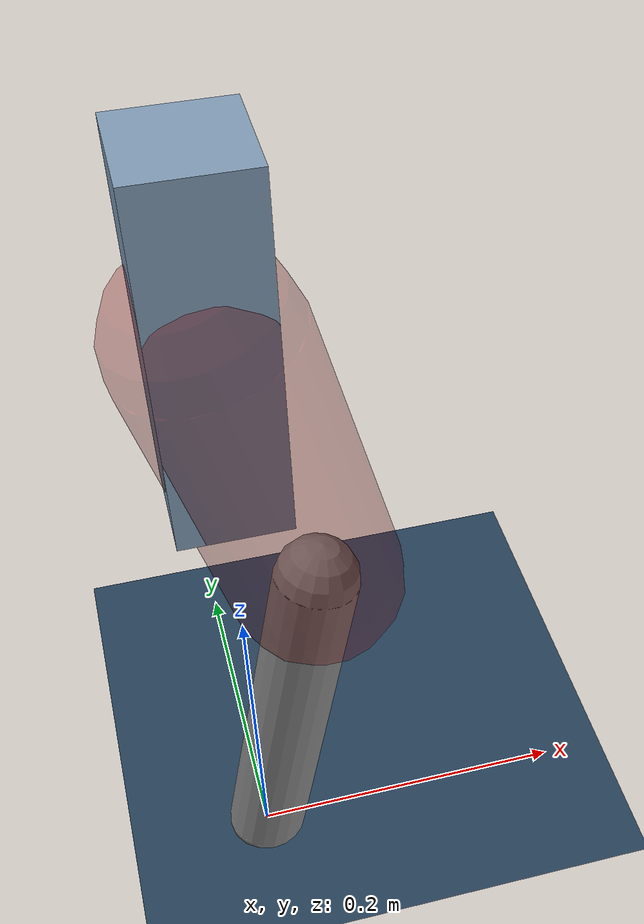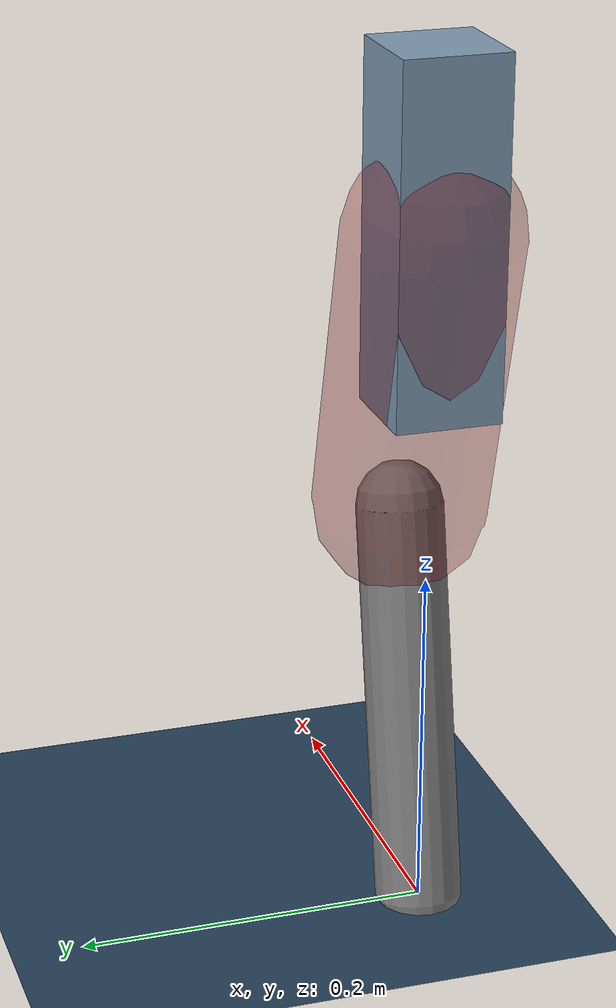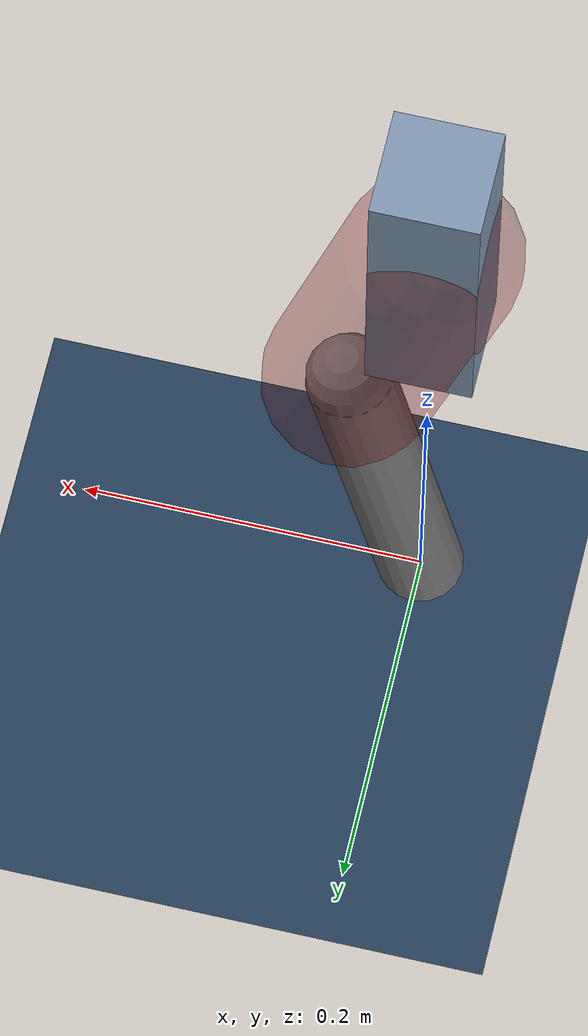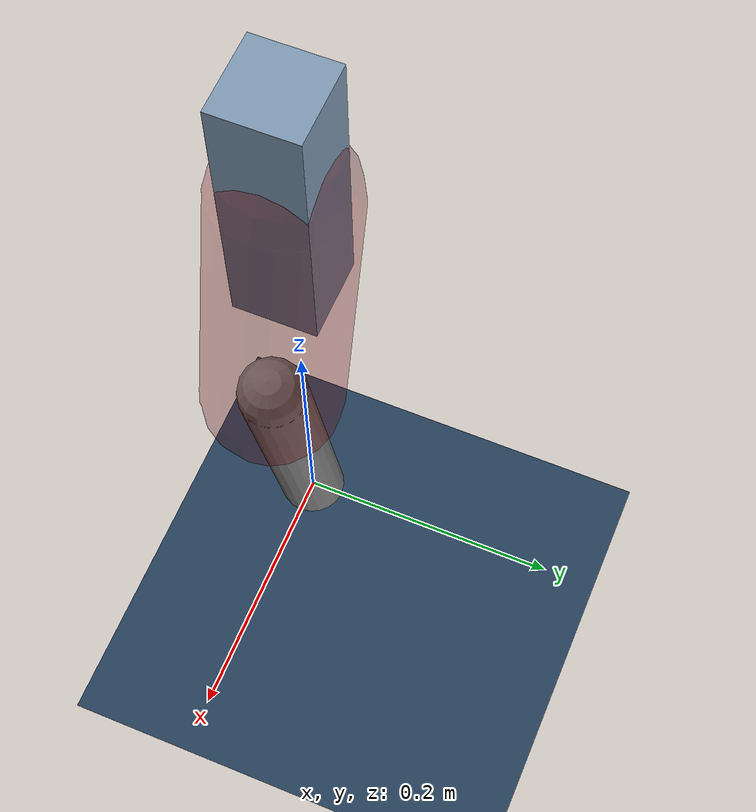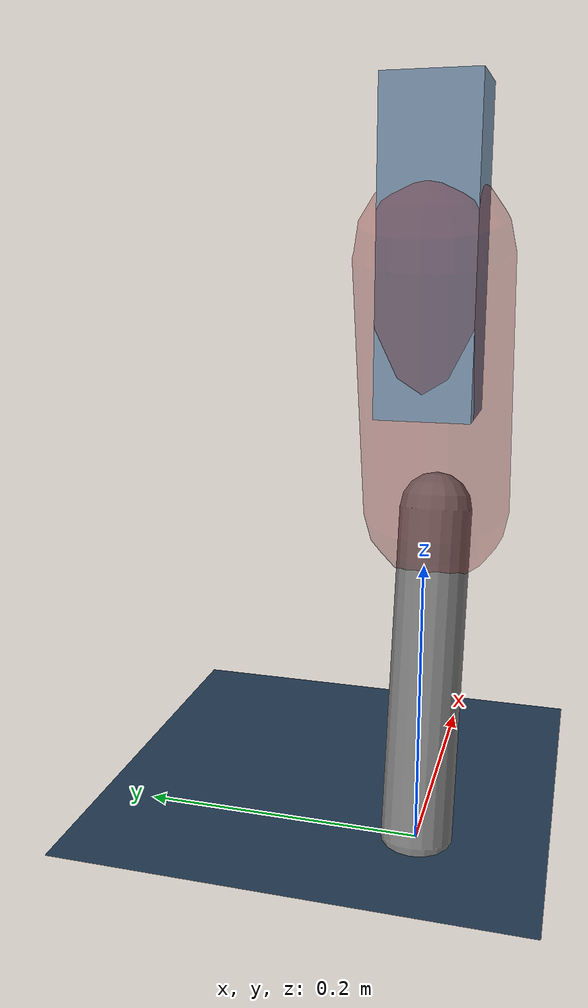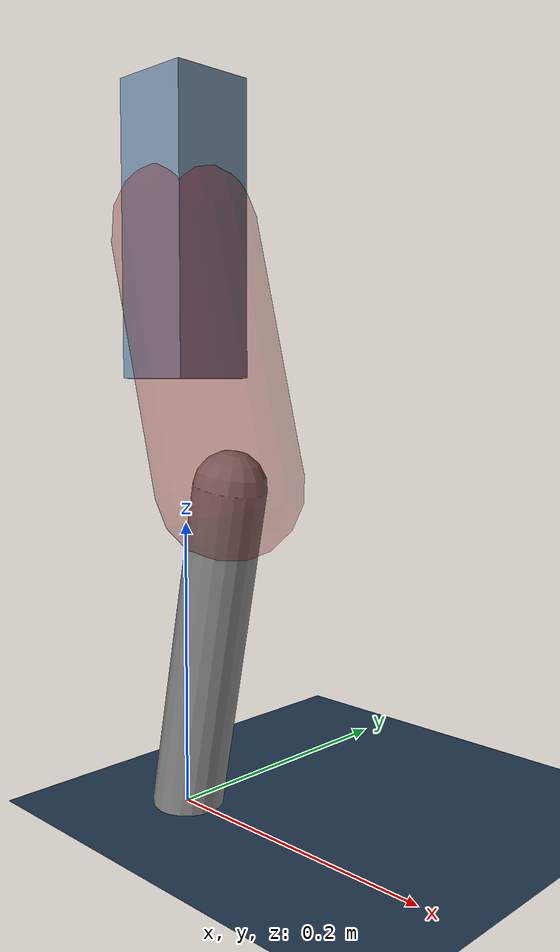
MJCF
<mujoco model="Hopper2D">
	<compiler inertiafromgeom="true" angle="radian" />
	<option timestep="0.001" integrator="implicit" cone="elliptic" solver="Newton" tolerance="1e-10" />

	<default>
		<geom contype="1" conaffinity="1" condim="3" friction="2 0.005 0.0001" solref="0.005 1" />
		<joint limited="true" damping="0.1" />
	</default>

	<asset>
		<texture name="skybox" type="skybox" builtin="gradient" rgb1=".4 .6 .8" rgb2="0 0 0" width="800" height="800" />
		<texture name="grid" type="2d" builtin="checker" rgb1=".1 .2 .3" rgb2=".2 .3 .4" width="300" height="300" mark="edge" markrgb=".2 .3 .4" />
		<material name="ground" texture="grid" texrepeat="1 1" texuniform="true" reflectance="0.1" />
		<material name="leg" rgba="0.5 0.6 0.7 1" />
	</asset>

	<worldbody>

		<geom name="floor" type="plane" size="5 5 0.25" material="ground" />

		<light directional="false" diffuse="0.8 0.8 0.8" specular="0.3 0.3 0.3" pos="0 0 2" dir="0 0 -1" />
		<light mode="targetbodycom" target="base" directional="false" diffuse="0.8 0.8 0.8" specular="0.3 0.3 0.3" pos="0 0 2" dir="0 0 -1" />

		<camera name="fixed" pos="0 -2 1" xyaxes="1 0 0 0 0 1" />
		<camera name="tracking" mode="trackcom" pos="0 -3 1" />

		<body name="root" pos="0 0 0.4003245469727728">
			<joint name="slide_x" type="slide" axis="1 0 0" range="-100 100" />
			<joint name="slide_z" type="slide" axis="0 0 1" range="0 10" />

			<body name="base" pos="0 0 0">
				<geom name="torso" type="box" size="0.03 0.03 0.1" mass="2.668" material="leg" />

				<body name="link1" pos="0 0 0" euler="0 1.317119221879555 0">
					<joint type="hinge" axis="0 -1 0" pos="0 0 0" name="hinge1" limited="true" range="-3.14 3.14" stiffness="0" damping="0.1" />
					<geom name="thigh" type="capsule" fromto="0 0 0 0.17768095702366146 0 0" size="0.05" rgba="0.5 0 0 0.3" mass="0.6749023925591536" />

					<body name="link2" pos="0.17768095702366146 0 0" euler="0 0.44654453411866424 0">
						<joint type="hinge" axis="0 -1 0" pos="0 0 0" name="hinge2" limited="true" range="-3.14 3.14" stiffness="0" damping="0.1" />
						<geom name="shank" type="capsule" fromto="0 0 0 0.23264358994911136 0 0" size="0.025" mass="0.4281792309542002" />

					</body>
				</body>
			</body>
		</body>
	</worldbody>

	<actuator>
		<motor name="torque1" joint="hinge1" ctrlrange="-84.61951535929481 84.61951535929481" ctrllimited="true" gear="1" />
		<motor name="torque2" joint="hinge2" ctrlrange="-43.34099579056902 43.34099579056902" ctrllimited="true" gear="1" />
	</actuator>
</mujoco>
